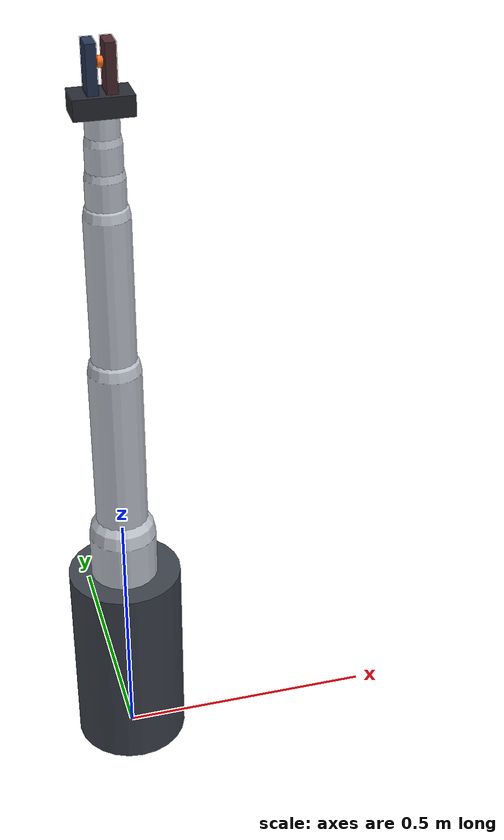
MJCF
<mujoco model="sortbot_arm">
  <!-- 6-DoF arm with a coupled parallel-jaw gripper. Primitive geoms only, no meshes. -->

  <compiler angle="radian" autolimits="true"/>

  <default>
    <default class="arm">
      <joint type="hinge" damping="12" armature="0.12" frictionloss="0.35"/>
      <geom type="capsule" rgba="0.78 0.80 0.84 1" density="850"
            friction="0.9 0.02 0.001" solref="0.008 1" solimp="0.95 0.99 0.001"/>
      <position kp="1200" kv="90" forcerange="-280 280"/>
    </default>
    <default class="jaw">
      <joint type="slide" damping="40" armature="0.02"/>
      <geom type="box" rgba="0.16 0.17 0.20 1" density="1100" condim="4" priority="2"
            friction="1.8 0.06 0.0008" solref="0.006 1" solimp="0.97 0.995 0.001"/>
    </default>
  </default>

  <worldbody>
    <body name="pedestal" pos="0 0 0">
      <geom name="pedestal_geom" type="cylinder" size="0.11 0.20" pos="0 0 0.20"
            rgba="0.24 0.26 0.30 1" density="2000"/>

      <body name="shoulder_link" pos="0 0 0.44">
        <joint class="arm" name="joint_1" axis="0 0 1" range="-3.05 3.05"/>
        <geom class="arm" name="shoulder_geom" fromto="0 0 -0.05 0 0 0.05" size="0.065"/>

        <body name="upper_arm_link" pos="0 0 0.07">
          <joint class="arm" name="joint_2" axis="0 1 0" range="-2.15 2.15"/>
          <geom class="arm" name="upper_arm_geom" fromto="0 0 0 0 0 0.34" size="0.050"/>

          <body name="forearm_link" pos="0 0 0.34">
            <joint class="arm" name="joint_3" axis="0 1 0" range="-2.70 2.70"/>
            <geom class="arm" name="forearm_geom" fromto="0 0 0 0 0 0.30" size="0.042"/>

            <body name="wrist_1_link" pos="0 0 0.30">
              <joint class="arm" name="joint_4" axis="0 1 0" range="-2.70 2.70"/>
              <geom class="arm" name="wrist_1_geom" fromto="0 0 0 0 0 0.07" size="0.036"/>

              <body name="wrist_2_link" pos="0 0 0.07">
                <joint class="arm" name="joint_5" axis="0 0 1" range="-3.05 3.05"/>
                <geom class="arm" name="wrist_2_geom" fromto="0 0 0 0 0 0.06" size="0.033"/>

                <body name="wrist_3_link" pos="0 0 0.06">
                  <joint class="arm" name="joint_6" axis="0 1 0" range="-3.05 3.05"/>
                  <geom class="arm" name="wrist_3_geom" fromto="0 0 0 0 0 0.05" size="0.030"/>

                  <body name="gripper_base" pos="0 0 0.05">
                    <geom name="gripper_base_geom" type="box" size="0.052 0.032 0.018"
                          pos="0 0 0.018" rgba="0.16 0.17 0.20 1" density="1200"/>

                    <site name="ee_site" pos="0 0 0.085" size="0.010" rgba="1.0 0.45 0.10 1"/>
                    <site name="wrist_ft_site" pos="0 0 0.0" size="0.008" rgba="0.2 0.8 1.0 0.4"/>
                    <camera name="wrist_cam" pos="0 -0.11 0.02" xyaxes="1 0 0 0 0.45 0.89" fovy="72"/>

                    <body name="left_jaw" pos="0.016 0 0.036">
                      <joint class="jaw" name="left_jaw_joint" axis="1 0 0" range="0 0.036"/>
                      <geom class="jaw" name="left_jaw_pad" size="0.009 0.020 0.042" pos="0 0 0.042"/>
                      <site name="left_pad_site" type="box" pos="0 0 0.042"
                            size="0.010 0.021 0.043" rgba="0.9 0.2 0.2 0.12"/>
                    </body>

                    <body name="right_jaw" pos="-0.016 0 0.036">
                      <joint class="jaw" name="right_jaw_joint" axis="-1 0 0" range="0 0.036"/>
                      <geom class="jaw" name="right_jaw_pad" size="0.009 0.020 0.042" pos="0 0 0.042"/>
                      <site name="right_pad_site" type="box" pos="0 0 0.042"
                            size="0.010 0.021 0.043" rgba="0.2 0.4 0.9 0.12"/>
                    </body>
                  </body>
                </body>
              </body>
            </body>
          </body>
        </body>
      </body>
    </body>
  </worldbody>

  <equality>
    <!-- Mechanically couple the two jaws so a single actuator drives the gripper. -->
    <joint name="jaw_coupling" joint1="right_jaw_joint" joint2="left_jaw_joint"
           polycoef="0 1 0 0 0" solref="0.005 1"/>
  </equality>

  <actuator>
    <position class="arm" name="act_joint_1" joint="joint_1" ctrlrange="-3.05 3.05"/>
    <position class="arm" name="act_joint_2" joint="joint_2" ctrlrange="-2.15 2.15"/>
    <position class="arm" name="act_joint_3" joint="joint_3" ctrlrange="-2.70 2.70"/>
    <position class="arm" name="act_joint_4" joint="joint_4" ctrlrange="-2.70 2.70"/>
    <position class="arm" name="act_joint_5" joint="joint_5" ctrlrange="-3.05 3.05"/>
    <position class="arm" name="act_joint_6" joint="joint_6" ctrlrange="-3.05 3.05"/>
    <position name="act_gripper" joint="left_jaw_joint" ctrlrange="0 0.036"
              kp="1400" kv="60" forcerange="-120 120"/>
  </actuator>

  <sensor>
    <framepos name="ee_pos" objtype="site" objname="ee_site"/>
    <framequat name="ee_quat" objtype="site" objname="ee_site"/>
    <framelinvel name="ee_linvel" objtype="site" objname="ee_site"/>

    <force name="wrist_force" site="wrist_ft_site"/>
    <torque name="wrist_torque" site="wrist_ft_site"/>

    <touch name="left_pad_touch" site="left_pad_site"/>
    <touch name="right_pad_touch" site="right_pad_site"/>

    <jointpos name="qpos_joint_1" joint="joint_1"/>
    <jointpos name="qpos_joint_2" joint="joint_2"/>
    <jointpos name="qpos_joint_3" joint="joint_3"/>
    <jointpos name="qpos_joint_4" joint="joint_4"/>
    <jointpos name="qpos_joint_5" joint="joint_5"/>
    <jointpos name="qpos_joint_6" joint="joint_6"/>
    <jointpos name="qpos_gripper" joint="left_jaw_joint"/>

    <jointvel name="qvel_joint_1" joint="joint_1"/>
    <jointvel name="qvel_joint_2" joint="joint_2"/>
    <jointvel name="qvel_joint_3" joint="joint_3"/>
    <jointvel name="qvel_joint_4" joint="joint_4"/>
    <jointvel name="qvel_joint_5" joint="joint_5"/>
    <jointvel name="qvel_joint_6" joint="joint_6"/>
    <jointvel name="qvel_gripper" joint="left_jaw_joint"/>
  </sensor>
</mujoco>
